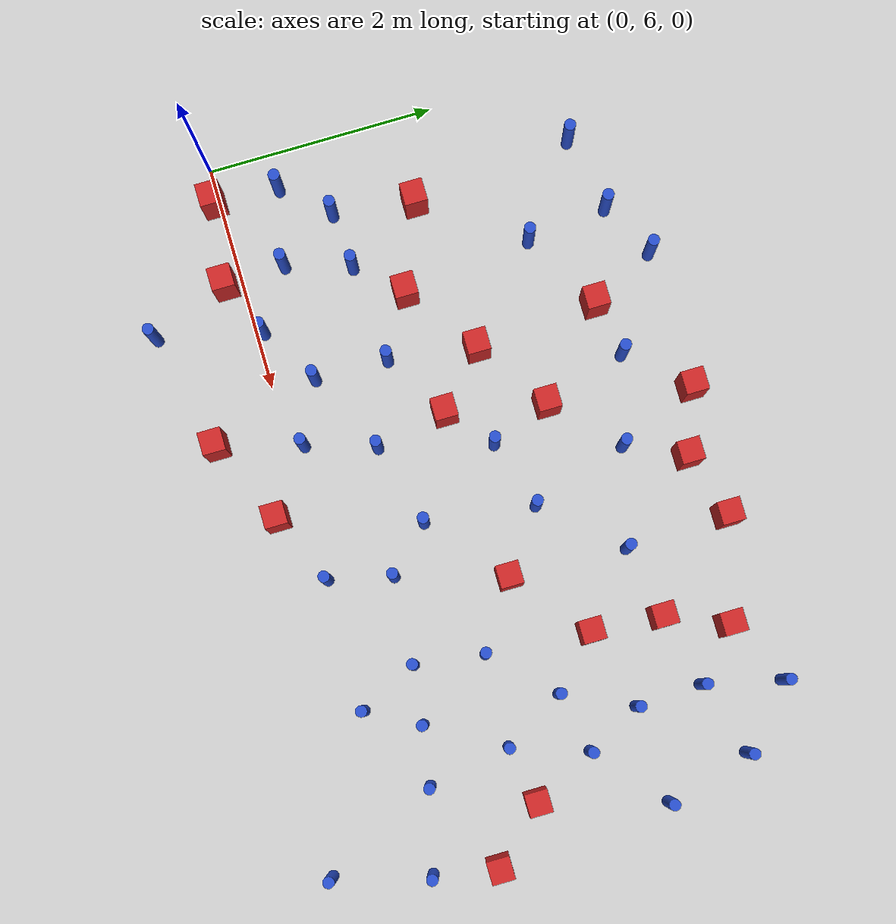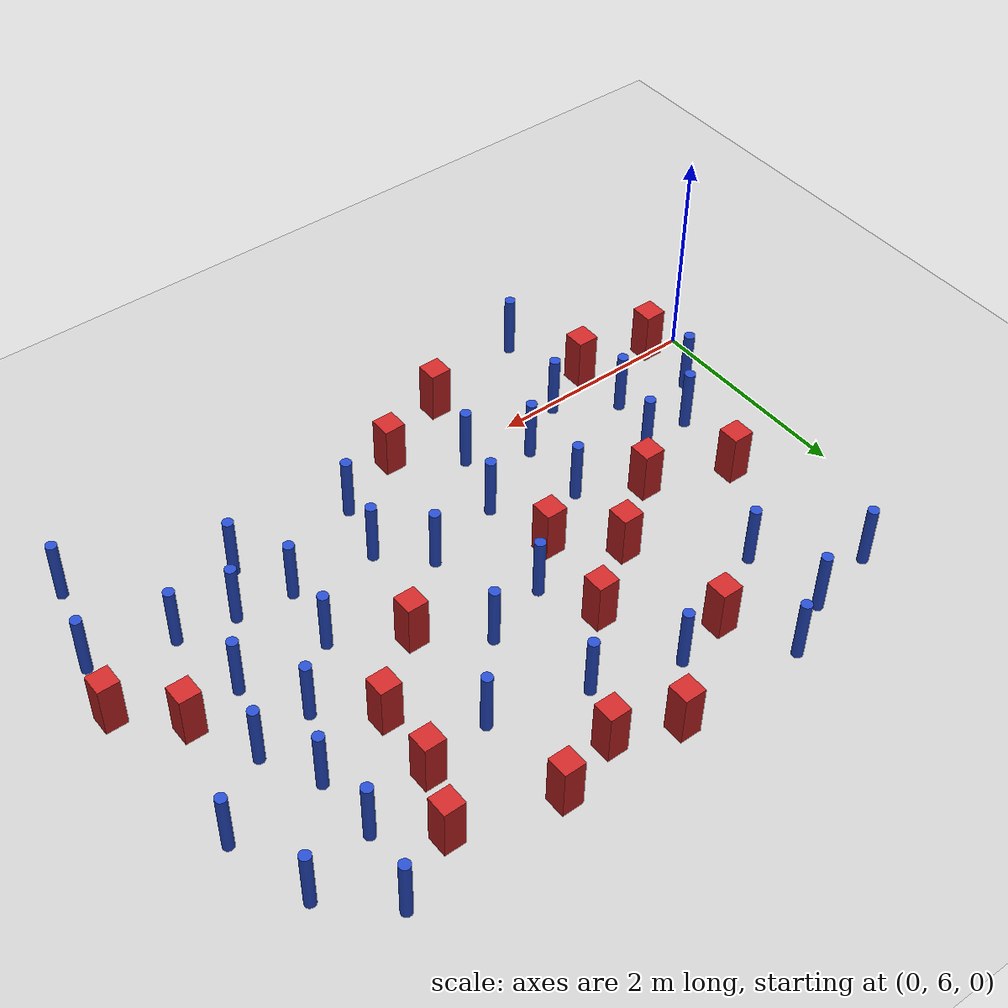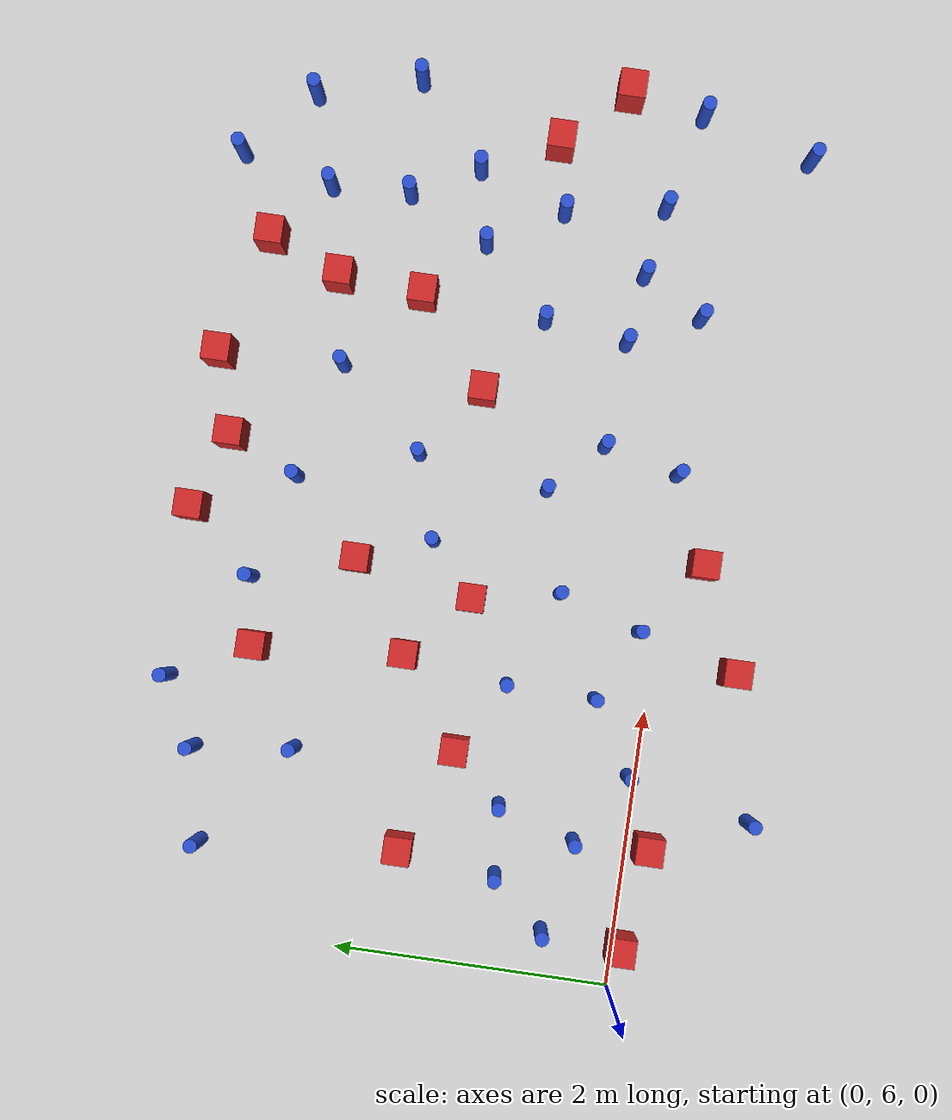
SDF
<sdf version="1.6">
 <world name="default">
  <model name="ground_plane">
   <static>1</static>
   <link name="link">
    <collision name="collision">
     <geometry><plane><normal>0 0 1</normal><size>100 100</size></plane></geometry>
     <surface><friction><ode><mu>100</mu><mu2>50</mu2></ode></friction></surface>
    </collision>
    <visual name="visual">
     <cast_shadows>0</cast_shadows>
     <geometry><plane><normal>0 0 1</normal><size>100 100</size></plane></geometry>
     <material>
      <ambient>1.0 1.0 1.0 1.0</ambient>
      <diffuse>0.8 0.8 0.8 1.0</diffuse>
      <specular>0.01 0.01 0.01 1.000000</specular>
     </material>
    </visual>
   </link>
  </model>
  <model name="square_post_obstacle19">
   <static>true</static>
   <pose>5.06456750365 9.18860553168 -6.11067671241e-07 -5.50515727128e-06 -8.79689657224e-07 2.37013304536e-05</pose>
   <link name="link">
    <pose>0 0 0.25 0 -0 0</pose>
    <inertial>
     <mass>100</mass>
     <inertia>
      <ixx>0.166667</ixx>
      <ixy>0</ixy>
      <ixz>0</ixz>
      <iyy>0.166667</iyy>
      <iyz>0</iyz>
      <izz>0.166667</izz>
     </inertia>
    </inertial>
    <collision name="collision"><geometry><box><size>.2 .2 .5</size></box></geometry></collision>
    <visual name="visual">
     <geometry><box><size>.2 .2 .5</size></box></geometry>
     <material>
      <script><name>Gazebo/Red</name><uri>file://media/materials/scripts/gazebo.material</uri></script>
     </material>
    </visual>
   </link>
  </model>
  <model name="square_post_obstacle26">
   <static>true</static>
   <pose>3.58451484105 9.26564607934 -6.11067671241e-07 -5.50515727128e-06 -8.79689657224e-07 2.37013304536e-05</pose>
   <link name="link">
    <pose>0 0 0.25 0 -0 0</pose>
    <inertial>
     <mass>100</mass>
     <inertia>
      <ixx>0.166667</ixx>
      <ixy>0</ixy>
      <ixz>0</ixz>
      <iyy>0.166667</iyy>
      <iyz>0</iyz>
      <izz>0.166667</izz>
     </inertia>
    </inertial>
    <collision name="collision"><geometry><box><size>.2 .2 .5</size></box></geometry></collision>
    <visual name="visual">
     <geometry><box><size>.2 .2 .5</size></box></geometry>
     <material>
      <script><name>Gazebo/Red</name><uri>file://media/materials/scripts/gazebo.material</uri></script>
     </material>
    </visual>
   </link>
  </model>
  <model name="pole_obstacle32">
   <static>true</static>
   <pose>3.352178859 8.76309005631 -9.4761961606e-06 5.49618799729e-07 2.36310414e-07 -1.55090534824e-07</pose>
   <link name="link">
    <pose>0 0 0.3 0 -0 0</pose>
    <inertial>
     <mass>1</mass>
     <inertia><ixx>0.145833</ixx><ixy>0</ixy><ixz>0</ixz><iyy>0.145833</iyy><iyz>0</iyz><izz>0.125</izz></inertia>
    </inertial>
    <collision name="collision">
     <geometry><cylinder><radius>0.05</radius><length>.6</length></cylinder></geometry>
    </collision>
    <visual name="visual">
     <geometry><cylinder><radius>0.05</radius><length>.6</length></cylinder></geometry>
     <material>
      <script><name>Gazebo/Blue</name><uri>file://media/materials/scripts/gazebo.material</uri></script>
     </material>
    </visual>
   </link>
  </model>
  <model name="square_post_obstacle27">
   <static>true</static>
   <pose>0.795154790728 7.63731687409 -6.11067671241e-07 -5.50515727128e-06 -8.79689657224e-07 2.37013304536e-05</pose>
   <link name="link">
    <pose>0 0 0.25 0 -0 0</pose>
    <inertial>
     <mass>100</mass>
     <inertia>
      <ixx>0.166667</ixx>
      <ixy>0</ixy>
      <ixz>0</ixz>
      <iyy>0.166667</iyy>
      <iyz>0</iyz>
      <izz>0.166667</izz>
     </inertia>
    </inertial>
    <collision name="collision"><geometry><box><size>.2 .2 .5</size></box></geometry></collision>
    <visual name="visual">
     <geometry><box><size>.2 .2 .5</size></box></geometry>
     <material>
      <script><name>Gazebo/Red</name><uri>file://media/materials/scripts/gazebo.material</uri></script>
     </material>
    </visual>
   </link>
  </model>
  <model name="pole_obstacle33">
   <static>true</static>
   <pose>1.53387280645 6.06597143249 -9.47619616065e-06 5.49618799737e-07 2.36310414061e-07 -1.550905348e-07</pose>
   <link name="link">
    <pose>0 0 0.3 0 -0 0</pose>
    <inertial>
     <mass>1</mass>
     <inertia><ixx>0.145833</ixx><ixy>0</ixy><ixz>0</ixz><iyy>0.145833</iyy><iyz>0</iyz><izz>0.125</izz></inertia>
    </inertial>
    <collision name="collision">
     <geometry><cylinder><radius>0.05</radius><length>.6</length></cylinder></geometry>
    </collision>
    <visual name="visual">
     <geometry><cylinder><radius>0.05</radius><length>.6</length></cylinder></geometry>
     <material>
      <script><name>Gazebo/Blue</name><uri>file://media/materials/scripts/gazebo.material</uri></script>
     </material>
    </visual>
   </link>
  </model>
  <model name="pole_obstacle35">
   <static>true</static>
   <pose>2.06796821063 7.03026522082 -9.47619616065e-06 5.49618799738e-07 2.3631041406e-07 -1.55090534801e-07</pose>
   <link name="link">
    <pose>0 0 0.3 0 -0 0</pose>
    <inertial>
     <mass>1</mass>
     <inertia><ixx>0.145833</ixx><ixy>0</ixy><ixz>0</ixz><iyy>0.145833</iyy><iyz>0</iyz><izz>0.125</izz></inertia>
    </inertial>
    <collision name="collision">
     <geometry><cylinder><radius>0.05</radius><length>.6</length></cylinder></geometry>
    </collision>
    <visual name="visual">
     <geometry><cylinder><radius>0.05</radius><length>.6</length></cylinder></geometry>
     <material>
      <script><name>Gazebo/Blue</name><uri>file://media/materials/scripts/gazebo.material</uri></script>
     </material>
    </visual>
   </link>
  </model>
  <model name="pole_obstacle41">
   <static>true</static>
   <pose>6.16754194107 5.36810423924 -9.47619616065e-06 5.49618799737e-07 2.36310414037e-07 -1.55090534814e-07</pose>
   <link name="link">
    <pose>0 0 0.3 0 -0 0</pose>
    <inertial>
     <mass>1</mass>
     <inertia><ixx>0.145833</ixx><ixy>0</ixy><ixz>0</ixz><iyy>0.145833</iyy><iyz>0</iyz><izz>0.125</izz></inertia>
    </inertial>
    <collision name="collision">
     <geometry><cylinder><radius>0.05</radius><length>.6</length></cylinder></geometry>
    </collision>
    <visual name="visual">
     <geometry><cylinder><radius>0.05</radius><length>.6</length></cylinder></geometry>
     <material>
      <script><name>Gazebo/Blue</name><uri>file://media/materials/scripts/gazebo.material</uri></script>
     </material>
    </visual>
   </link>
  </model>
  <model name="pole_obstacle43">
   <static>true</static>
   <pose>0.69562404979 6.92408843927 -9.47619616065e-06 5.49618799737e-07 2.36310414065e-07 -1.55090534796e-07</pose>
   <link name="link">
    <pose>0 0 0.3 0 -0 0</pose>
    <inertial>
     <mass>1</mass>
     <inertia><ixx>0.145833</ixx><ixy>0</ixy><ixz>0</ixz><iyy>0.145833</iyy><iyz>0</iyz><izz>0.125</izz></inertia>
    </inertial>
    <collision name="collision">
     <geometry><cylinder><radius>0.05</radius><length>.6</length></cylinder></geometry>
    </collision>
    <visual name="visual">
     <geometry><cylinder><radius>0.05</radius><length>.6</length></cylinder></geometry>
     <material>
      <script><name>Gazebo/Blue</name><uri>file://media/materials/scripts/gazebo.material</uri></script>
     </material>
    </visual>
   </link>
  </model>
  <model name="pole_obstacle46">
   <static>true</static>
   <pose>1.32985829244 5.16014853182 -9.47619616065e-06 5.49618799737e-07 2.36310414061e-07 -1.550905348e-07</pose>
   <link name="link">
    <pose>0 0 0.3 0 -0 0</pose>
    <inertial>
     <mass>1</mass>
     <inertia><ixx>0.145833</ixx><ixy>0</ixy><ixz>0</ixz><iyy>0.145833</iyy><iyz>0</iyz><izz>0.125</izz></inertia>
    </inertial>
    <collision name="collision">
     <geometry><cylinder><radius>0.05</radius><length>.6</length></cylinder></geometry>
    </collision>
    <visual name="visual">
     <geometry><cylinder><radius>0.05</radius><length>.6</length></cylinder></geometry>
     <material>
      <script><name>Gazebo/Blue</name><uri>file://media/materials/scripts/gazebo.material</uri></script>
     </material>
    </visual>
   </link>
  </model>
  <model name="pole_obstacle53">
   <static>true</static>
   <pose>4.2074985339 8.54197435382 -9.47619616065e-06 5.49618799737e-07 2.36310414065e-07 -1.55090534796e-07</pose>
   <link name="link">
    <pose>0 0 0.3 0 -0 0</pose>
    <inertial>
     <mass>1</mass>
     <inertia><ixx>0.145833</ixx><ixy>0</ixy><ixz>0</ixz><iyy>0.145833</iyy><iyz>0</iyz><izz>0.125</izz></inertia>
    </inertial>
    <collision name="collision">
     <geometry><cylinder><radius>0.05</radius><length>.6</length></cylinder></geometry>
    </collision>
    <visual name="visual">
     <geometry><cylinder><radius>0.05</radius><length>.6</length></cylinder></geometry>
     <material>
      <script><name>Gazebo/Blue</name><uri>file://media/materials/scripts/gazebo.material</uri></script>
     </material>
    </visual>
   </link>
  </model>
  <model name="pole_obstacle56">
   <static>true</static>
   <pose>1.306476107 9.21551760997 -9.47619616065e-06 5.49618799737e-07 2.36310414046e-07 -1.55090534809e-07</pose>
   <link name="link">
    <pose>0 0 0.3 0 -0 0</pose>
    <inertial>
     <mass>1</mass>
     <inertia><ixx>0.145833</ixx><ixy>0</ixy><ixz>0</ixz><iyy>0.145833</iyy><iyz>0</iyz><izz>0.125</izz></inertia>
    </inertial>
    <collision name="collision">
     <geometry><cylinder><radius>0.05</radius><length>.6</length></cylinder></geometry>
    </collision>
    <visual name="visual">
     <geometry><cylinder><radius>0.05</radius><length>.6</length></cylinder></geometry>
     <material>
      <script><name>Gazebo/Blue</name><uri>file://media/materials/scripts/gazebo.material</uri></script>
     </material>
    </visual>
   </link>
  </model>
  <model name="pole_obstacle60">
   <static>true</static>
   <pose>5.51579804954 8.23360933361 -9.47619616065e-06 5.49618799737e-07 2.36310414065e-07 -1.55090534796e-07</pose>
   <link name="link">
    <pose>0 0 0.3 0 -0 0</pose>
    <inertial>
     <mass>1</mass>
     <inertia><ixx>0.145833</ixx><ixy>0</ixy><ixz>0</ixz><iyy>0.145833</iyy><iyz>0</iyz><izz>0.125</izz></inertia>
    </inertial>
    <collision name="collision">
     <geometry><cylinder><radius>0.05</radius><length>.6</length></cylinder></geometry>
    </collision>
    <visual name="visual">
     <geometry><cylinder><radius>0.05</radius><length>.6</length></cylinder></geometry>
     <material>
      <script><name>Gazebo/Blue</name><uri>file://media/materials/scripts/gazebo.material</uri></script>
     </material>
    </visual>
   </link>
  </model>
  <model name="pole_obstacle62">
   <static>true</static>
   <pose>4.65214553466 6.51586368722 -9.47619616065e-06 5.49618799737e-07 2.36310414037e-07 -1.55090534814e-07</pose>
   <link name="link">
    <pose>0 0 0.3 0 -0 0</pose>
    <inertial>
     <mass>1</mass>
     <inertia><ixx>0.145833</ixx><ixy>0</ixy><ixz>0</ixz><iyy>0.145833</iyy><iyz>0</iyz><izz>0.125</izz></inertia>
    </inertial>
    <collision name="collision">
     <geometry><cylinder><radius>0.05</radius><length>.6</length></cylinder></geometry>
    </collision>
    <visual name="visual">
     <geometry><cylinder><radius>0.05</radius><length>.6</length></cylinder></geometry>
     <material>
      <script><name>Gazebo/Blue</name><uri>file://media/materials/scripts/gazebo.material</uri></script>
     </material>
    </visual>
   </link>
  </model>
  <model name="pole_obstacle74">
   <static>true</static>
   <pose>0.635457854481 9.07619519162 -9.47619616065e-06 5.49618799737e-07 2.36310414038e-07 -1.55090534813e-07</pose>
   <link name="link">
    <pose>0 0 0.3 0 -0 0</pose>
    <inertial>
     <mass>1</mass>
     <inertia><ixx>0.145833</ixx><ixy>0</ixy><ixz>0</ixz><iyy>0.145833</iyy><iyz>0</iyz><izz>0.125</izz></inertia>
    </inertial>
    <collision name="collision">
     <geometry><cylinder><radius>0.05</radius><length>.6</length></cylinder></geometry>
    </collision>
    <visual name="visual">
     <geometry><cylinder><radius>0.05</radius><length>.6</length></cylinder></geometry>
     <material>
      <script><name>Gazebo/Blue</name><uri>file://media/materials/scripts/gazebo.material</uri></script>
     </material>
    </visual>
   </link>
  </model>
  <model name="square_post_obstacle66">
   <static>true</static>
   <pose>2.8184095951 8.23526689373 -6.11067671241e-07 -5.50515727128e-06 -8.79689657224e-07 2.37013304536e-05</pose>
   <link name="link">
    <pose>0 0 0.25 0 -0 0</pose>
    <inertial>
     <mass>100</mass>
     <inertia>
      <ixx>0.166667</ixx>
      <ixy>0</ixy>
      <ixz>0</ixz>
      <iyy>0.166667</iyy>
      <iyz>0</iyz>
      <izz>0.166667</izz>
     </inertia>
    </inertial>
    <collision name="collision"><geometry><box><size>.2 .2 .5</size></box></geometry></collision>
    <visual name="visual">
     <geometry><box><size>.2 .2 .5</size></box></geometry>
     <material>
      <script><name>Gazebo/Red</name><uri>file://media/materials/scripts/gazebo.material</uri></script>
     </material>
    </visual>
   </link>
  </model>
  <model name="pole_obstacle81">
   <static>true</static>
   <pose>5.64827300165 9.48971298139 -9.47619616065e-06 5.49618799737e-07 2.36310414065e-07 -1.55090534796e-07</pose>
   <link name="link">
    <pose>0 0 0.3 0 -0 0</pose>
    <inertial>
     <mass>1</mass>
     <inertia><ixx>0.145833</ixx><ixy>0</ixy><ixz>0</ixz><iyy>0.145833</iyy><iyz>0</iyz><izz>0.125</izz></inertia>
    </inertial>
    <collision name="collision">
     <geometry><cylinder><radius>0.05</radius><length>.6</length></cylinder></geometry>
    </collision>
    <visual name="visual">
     <geometry><cylinder><radius>0.05</radius><length>.6</length></cylinder></geometry>
     <material>
      <script><name>Gazebo/Blue</name><uri>file://media/materials/scripts/gazebo.material</uri></script>
     </material>
    </visual>
   </link>
  </model>
  <model name="pole_obstacle94">
   <static>true</static>
   <pose>2.58232456559 8.98506720713 -9.4761961606e-06 5.49618799729e-07 2.36310414e-07 -1.55090534824e-07</pose>
   <link name="link">
    <pose>0 0 0.3 0 -0 0</pose>
    <inertial>
     <mass>1</mass>
     <inertia><ixx>0.145833</ixx><ixy>0</ixy><ixz>0</ixz><iyy>0.145833</iyy><iyz>0</iyz><izz>0.125</izz></inertia>
    </inertial>
    <collision name="collision">
     <geometry><cylinder><radius>0.05</radius><length>.6</length></cylinder></geometry>
    </collision>
    <visual name="visual">
     <geometry><cylinder><radius>0.05</radius><length>.6</length></cylinder></geometry>
     <material>
      <script><name>Gazebo/Blue</name><uri>file://media/materials/scripts/gazebo.material</uri></script>
     </material>
    </visual>
   </link>
  </model>
  <model name="pole_obstacle97">
   <static>true</static>
   <pose>2.05396237625 6.38372220486 -9.47619616065e-06 5.49618799738e-07 2.3631041406e-07 -1.55090534801e-07</pose>
   <link name="link">
    <pose>0 0 0.3 0 -0 0</pose>
    <inertial>
     <mass>1</mass>
     <inertia><ixx>0.145833</ixx><ixy>0</ixy><ixz>0</ixz><iyy>0.145833</iyy><iyz>0</iyz><izz>0.125</izz></inertia>
    </inertial>
    <collision name="collision">
     <geometry><cylinder><radius>0.05</radius><length>.6</length></cylinder></geometry>
    </collision>
    <visual name="visual">
     <geometry><cylinder><radius>0.05</radius><length>.6</length></cylinder></geometry>
     <material>
      <script><name>Gazebo/Blue</name><uri>file://media/materials/scripts/gazebo.material</uri></script>
     </material>
    </visual>
   </link>
  </model>
  <model name="square_post_obstacle95">
   <static>true</static>
   <pose>2.09166707071 8.88248718419 -6.11067671241e-07 -5.50515727128e-06 -8.79689657224e-07 2.37013304536e-05</pose>
   <link name="link">
    <pose>0 0 0.25 0 -0 0</pose>
    <inertial>
     <mass>100</mass>
     <inertia>
      <ixx>0.166667</ixx>
      <ixy>0</ixy>
      <ixz>0</ixz>
      <iyy>0.166667</iyy>
      <iyz>0</iyz>
      <izz>0.166667</izz>
     </inertia>
    </inertial>
    <collision name="collision"><geometry><box><size>.2 .2 .5</size></box></geometry></collision>
    <visual name="visual">
     <geometry><box><size>.2 .2 .5</size></box></geometry>
     <material>
      <script><name>Gazebo/Red</name><uri>file://media/materials/scripts/gazebo.material</uri></script>
     </material>
    </visual>
   </link>
  </model>
  <model name="square_post_obstacle99">
   <static>true</static>
   <pose>4.16029869669 7.50338387505 -6.11067671241e-07 -5.50515727128e-06 -8.79689657224e-07 2.37013304536e-05</pose>
   <link name="link">
    <pose>0 0 0.25 0 -0 0</pose>
    <inertial>
     <mass>100</mass>
     <inertia>
      <ixx>0.166667</ixx>
      <ixy>0</ixy>
      <ixz>0</ixz>
      <iyy>0.166667</iyy>
      <iyz>0</iyz>
      <izz>0.166667</izz>
     </inertia>
    </inertial>
    <collision name="collision"><geometry><box><size>.2 .2 .5</size></box></geometry></collision>
    <visual name="visual">
     <geometry><box><size>.2 .2 .5</size></box></geometry>
     <material>
      <script><name>Gazebo/Red</name><uri>file://media/materials/scripts/gazebo.material</uri></script>
     </material>
    </visual>
   </link>
  </model>
  <model name="pole_obstacle104">
   <static>true</static>
   <pose>6.14962482124 9.01870685861 -9.47619616065e-06 5.49618799737e-07 2.36310414065e-07 -1.55090534796e-07</pose>
   <link name="link">
    <pose>0 0 0.3 0 -0 0</pose>
    <inertial>
     <mass>1</mass>
     <inertia><ixx>0.145833</ixx><ixy>0</ixy><ixz>0</ixz><iyy>0.145833</iyy><iyz>0</iyz><izz>0.125</izz></inertia>
    </inertial>
    <collision name="collision">
     <geometry><cylinder><radius>0.05</radius><length>.6</length></cylinder></geometry>
    </collision>
    <visual name="visual">
     <geometry><cylinder><radius>0.05</radius><length>.6</length></cylinder></geometry>
     <material>
      <script><name>Gazebo/Blue</name><uri>file://media/materials/scripts/gazebo.material</uri></script>
     </material>
    </visual>
   </link>
  </model>
  <model name="square_post_obstacle102">
   <static>true</static>
   <pose>2.18137248666 7.79660130478 -6.11067671241e-07 -5.50515727128e-06 -8.79689657224e-07 2.37013304536e-05</pose>
   <link name="link">
    <pose>0 0 0.25 0 -0 0</pose>
    <inertial>
     <mass>100</mass>
     <inertia>
      <ixx>0.166667</ixx>
      <ixy>0</ixy>
      <ixz>0</ixz>
      <iyy>0.166667</iyy>
      <iyz>0</iyz>
      <izz>0.166667</izz>
     </inertia>
    </inertial>
    <collision name="collision"><geometry><box><size>.2 .2 .5</size></box></geometry></collision>
    <visual name="visual">
     <geometry><box><size>.2 .2 .5</size></box></geometry>
     <material>
      <script><name>Gazebo/Red</name><uri>file://media/materials/scripts/gazebo.material</uri></script>
     </material>
    </visual>
   </link>
  </model>
  <model name="pole_obstacle110">
   <static>true</static>
   <pose>2.77662614913 6.73837416838 -9.47619616065e-06 5.49618799738e-07 2.3631041406e-07 -1.55090534801e-07</pose>
   <link name="link">
    <pose>0 0 0.3 0 -0 0</pose>
    <inertial>
     <mass>1</mass>
     <inertia><ixx>0.145833</ixx><ixy>0</ixy><ixz>0</ixz><iyy>0.145833</iyy><iyz>0</iyz><izz>0.125</izz></inertia>
    </inertial>
    <collision name="collision">
     <geometry><cylinder><radius>0.05</radius><length>.6</length></cylinder></geometry>
    </collision>
    <visual name="visual">
     <geometry><cylinder><radius>0.05</radius><length>.6</length></cylinder></geometry>
     <material>
      <script><name>Gazebo/Blue</name><uri>file://media/materials/scripts/gazebo.material</uri></script>
     </material>
    </visual>
   </link>
  </model>
  <model name="pole_obstacle113">
   <static>true</static>
   <pose>5.76841336883 7.74997790852 -9.47619616065e-06 5.49618799737e-07 2.36310414037e-07 -1.55090534814e-07</pose>
   <link name="link">
    <pose>0 0 0.3 0 -0 0</pose>
    <inertial>
     <mass>1</mass>
     <inertia><ixx>0.145833</ixx><ixy>0</ixy><ixz>0</ixz><iyy>0.145833</iyy><iyz>0</iyz><izz>0.125</izz></inertia>
    </inertial>
    <collision name="collision">
     <geometry><cylinder><radius>0.05</radius><length>.6</length></cylinder></geometry>
    </collision>
    <visual name="visual">
     <geometry><cylinder><radius>0.05</radius><length>.6</length></cylinder></geometry>
     <material>
      <script><name>Gazebo/Blue</name><uri>file://media/materials/scripts/gazebo.material</uri></script>
     </material>
    </visual>
   </link>
  </model>
  <model name="square_post_obstacle124">
   <static>true</static>
   <pose>2.38017946233 5.40930505218 -6.11067671241e-07 -5.50515727128e-06 -8.79689657224e-07 2.37013304536e-05</pose>
   <link name="link">
    <pose>0 0 0.25 0 -0 0</pose>
    <inertial>
     <mass>100</mass>
     <inertia>
      <ixx>0.166667</ixx>
      <ixy>0</ixy>
      <ixz>0</ixz>
      <iyy>0.166667</iyy>
      <iyz>0</iyz>
      <izz>0.166667</izz>
     </inertia>
    </inertial>
    <collision name="collision"><geometry><box><size>.2 .2 .5</size></box></geometry></collision>
    <visual name="visual">
     <geometry><box><size>.2 .2 .5</size></box></geometry>
     <material>
      <script><name>Gazebo/Red</name><uri>file://media/materials/scripts/gazebo.material</uri></script>
     </material>
    </visual>
   </link>
  </model>
  <model name="pole_obstacle131">
   <static>true</static>
   <pose>3.88376765679 6.56547482414 -9.47619616065e-06 5.49618799738e-07 2.3631041406e-07 -1.55090534801e-07</pose>
   <link name="link">
    <pose>0 0 0.3 0 -0 0</pose>
    <inertial>
     <mass>1</mass>
     <inertia><ixx>0.145833</ixx><ixy>0</ixy><ixz>0</ixz><iyy>0.145833</iyy><iyz>0</iyz><izz>0.125</izz></inertia>
    </inertial>
    <collision name="collision">
     <geometry><cylinder><radius>0.05</radius><length>.6</length></cylinder></geometry>
    </collision>
    <visual name="visual">
     <geometry><cylinder><radius>0.05</radius><length>.6</length></cylinder></geometry>
     <material>
      <script><name>Gazebo/Blue</name><uri>file://media/materials/scripts/gazebo.material</uri></script>
     </material>
    </visual>
   </link>
  </model>
  <model name="square_post_obstacle131">
   <static>true</static>
   <pose>6.04284514416 7.19947064179 -6.11067671241e-07 -5.50515727128e-06 -8.79689657224e-07 2.37013304536e-05</pose>
   <link name="link">
    <pose>0 0 0.25 0 -0 0</pose>
    <inertial>
     <mass>100</mass>
     <inertia>
      <ixx>0.166667</ixx>
      <ixy>0</ixy>
      <ixz>0</ixz>
      <iyy>0.166667</iyy>
      <iyz>0</iyz>
      <izz>0.166667</izz>
     </inertia>
    </inertial>
    <collision name="collision"><geometry><box><size>.2 .2 .5</size></box></geometry></collision>
    <visual name="visual">
     <geometry><box><size>.2 .2 .5</size></box></geometry>
     <material>
      <script><name>Gazebo/Red</name><uri>file://media/materials/scripts/gazebo.material</uri></script>
     </material>
    </visual>
   </link>
  </model>
  <model name="pole_obstacle138">
   <static>true</static>
   <pose>3.75040486233 6.01168148282 -9.47619616065e-06 5.49618799738e-07 2.3631041406e-07 -1.55090534801e-07</pose>
   <link name="link">
    <pose>0 0 0.3 0 -0 0</pose>
    <inertial>
     <mass>1</mass>
     <inertia><ixx>0.145833</ixx><ixy>0</ixy><ixz>0</ixz><iyy>0.145833</iyy><iyz>0</iyz><izz>0.125</izz></inertia>
    </inertial>
    <collision name="collision">
     <geometry><cylinder><radius>0.05</radius><length>.6</length></cylinder></geometry>
    </collision>
    <visual name="visual">
     <geometry><cylinder><radius>0.05</radius><length>.6</length></cylinder></geometry>
     <material>
      <script><name>Gazebo/Blue</name><uri>file://media/materials/scripts/gazebo.material</uri></script>
     </material>
    </visual>
   </link>
  </model>
  <model name="pole_obstacle139">
   <static>true</static>
   <pose>5.67176726961 6.36876781877 -9.47619616065e-06 5.49618799737e-07 2.36310414037e-07 -1.55090534814e-07</pose>
   <link name="link">
    <pose>0 0 0.3 0 -0 0</pose>
    <inertial>
     <mass>1</mass>
     <inertia><ixx>0.145833</ixx><ixy>0</ixy><ixz>0</ixz><iyy>0.145833</iyy><iyz>0</iyz><izz>0.125</izz></inertia>
    </inertial>
    <collision name="collision">
     <geometry><cylinder><radius>0.05</radius><length>.6</length></cylinder></geometry>
    </collision>
    <visual name="visual">
     <geometry><cylinder><radius>0.05</radius><length>.6</length></cylinder></geometry>
     <material>
      <script><name>Gazebo/Blue</name><uri>file://media/materials/scripts/gazebo.material</uri></script>
     </material>
    </visual>
   </link>
  </model>
  <model name="square_post_obstacle136">
   <static>true</static>
   <pose>6.47978473297 6.74435235856 -6.11067671241e-07 -5.50515727128e-06 -8.79689657224e-07 2.37013304536e-05</pose>
   <link name="link">
    <pose>0 0 0.25 0 -0 0</pose>
    <inertial>
     <mass>100</mass>
     <inertia>
      <ixx>0.166667</ixx>
      <ixy>0</ixy>
      <ixz>0</ixz>
      <iyy>0.166667</iyy>
      <iyz>0</iyz>
      <izz>0.166667</izz>
     </inertia>
    </inertial>
    <collision name="collision"><geometry><box><size>.2 .2 .5</size></box></geometry></collision>
    <visual name="visual">
     <geometry><box><size>.2 .2 .5</size></box></geometry>
     <material>
      <script><name>Gazebo/Red</name><uri>file://media/materials/scripts/gazebo.material</uri></script>
     </material>
    </visual>
   </link>
  </model>
  <model name="square_post_obstacle138">
   <static>true</static>
   <pose>0.314526451158 5.95752838593 -6.11067671241e-07 -5.50515727128e-06 -8.79689657224e-07 2.37013304536e-05</pose>
   <link name="link">
    <pose>0 0 0.25 0 -0 0</pose>
    <inertial>
     <mass>100</mass>
     <inertia>
      <ixx>0.166667</ixx>
      <ixy>0</ixy>
      <ixz>0</ixz>
      <iyy>0.166667</iyy>
      <iyz>0</iyz>
      <izz>0.166667</izz>
     </inertia>
    </inertial>
    <collision name="collision"><geometry><box><size>.2 .2 .5</size></box></geometry></collision>
    <visual name="visual">
     <geometry><box><size>.2 .2 .5</size></box></geometry>
     <material>
      <script><name>Gazebo/Red</name><uri>file://media/materials/scripts/gazebo.material</uri></script>
     </material>
    </visual>
   </link>
  </model>
  <model name="pole_obstacle146">
   <static>true</static>
   <pose>3.63726874802 7.90018663886 -9.47619616065e-06 5.49618799738e-07 2.3631041406e-07 -1.55090534801e-07</pose>
   <link name="link">
    <pose>0 0 0.3 0 -0 0</pose>
    <inertial>
     <mass>1</mass>
     <inertia><ixx>0.145833</ixx><ixy>0</ixy><ixz>0</ixz><iyy>0.145833</iyy><iyz>0</iyz><izz>0.125</izz></inertia>
    </inertial>
    <collision name="collision">
     <geometry><cylinder><radius>0.05</radius><length>.6</length></cylinder></geometry>
    </collision>
    <visual name="visual">
     <geometry><cylinder><radius>0.05</radius><length>.6</length></cylinder></geometry>
     <material>
      <script><name>Gazebo/Blue</name><uri>file://media/materials/scripts/gazebo.material</uri></script>
     </material>
    </visual>
   </link>
  </model>
  <model name="pole_obstacle149">
   <static>true</static>
   <pose>5.54113057824 7.09716697608 -9.47619616065e-06 5.49618799737e-07 2.36310414037e-07 -1.55090534814e-07</pose>
   <link name="link">
    <pose>0 0 0.3 0 -0 0</pose>
    <inertial>
     <mass>1</mass>
     <inertia><ixx>0.145833</ixx><ixy>0</ixy><ixz>0</ixz><iyy>0.145833</iyy><iyz>0</iyz><izz>0.125</izz></inertia>
    </inertial>
    <collision name="collision">
     <geometry><cylinder><radius>0.05</radius><length>.6</length></cylinder></geometry>
    </collision>
    <visual name="visual">
     <geometry><cylinder><radius>0.05</radius><length>.6</length></cylinder></geometry>
     <material>
      <script><name>Gazebo/Blue</name><uri>file://media/materials/scripts/gazebo.material</uri></script>
     </material>
    </visual>
   </link>
  </model>
  <model name="pole_obstacle150">
   <static>true</static>
   <pose>5.1600960473 6.45443425764 -9.47619616065e-06 5.49618799737e-07 2.36310414037e-07 -1.55090534814e-07</pose>
   <link name="link">
    <pose>0 0 0.3 0 -0 0</pose>
    <inertial>
     <mass>1</mass>
     <inertia><ixx>0.145833</ixx><ixy>0</ixy><ixz>0</ixz><iyy>0.145833</iyy><iyz>0</iyz><izz>0.125</izz></inertia>
    </inertial>
    <collision name="collision">
     <geometry><cylinder><radius>0.05</radius><length>.6</length></cylinder></geometry>
    </collision>
    <visual name="visual">
     <geometry><cylinder><radius>0.05</radius><length>.6</length></cylinder></geometry>
     <material>
      <script><name>Gazebo/Blue</name><uri>file://media/materials/scripts/gazebo.material</uri></script>
     </material>
    </visual>
   </link>
  </model>
  <model name="pole_obstacle163">
   <static>true</static>
   <pose>4.7338340878 7.12941362744 -9.47619616065e-06 5.49618799737e-07 2.36310414037e-07 -1.55090534814e-07</pose>
   <link name="link">
    <pose>0 0 0.3 0 -0 0</pose>
    <inertial>
     <mass>1</mass>
     <inertia><ixx>0.145833</ixx><ixy>0</ixy><ixz>0</ixz><iyy>0.145833</iyy><iyz>0</iyz><izz>0.125</izz></inertia>
    </inertial>
    <collision name="collision">
     <geometry><cylinder><radius>0.05</radius><length>.6</length></cylinder></geometry>
    </collision>
    <visual name="visual">
     <geometry><cylinder><radius>0.05</radius><length>.6</length></cylinder></geometry>
     <material>
      <script><name>Gazebo/Blue</name><uri>file://media/materials/scripts/gazebo.material</uri></script>
     </material>
    </visual>
   </link>
  </model>
  <model name="square_post_obstacle158">
   <static>true</static>
   <pose>2.64756886154 7.37179225267 -6.11067671241e-07 -5.50515727128e-06 -8.79689657224e-07 2.37013304536e-05</pose>
   <link name="link">
    <pose>0 0 0.25 0 -0 0</pose>
    <inertial>
     <mass>100</mass>
     <inertia>
      <ixx>0.166667</ixx>
      <ixy>0</ixy>
      <ixz>0</ixz>
      <iyy>0.166667</iyy>
      <iyz>0</iyz>
      <izz>0.166667</izz>
     </inertia>
    </inertial>
    <collision name="collision"><geometry><box><size>.2 .2 .5</size></box></geometry></collision>
    <visual name="visual">
     <geometry><box><size>.2 .2 .5</size></box></geometry>
     <material>
      <script><name>Gazebo/Red</name><uri>file://media/materials/scripts/gazebo.material</uri></script>
     </material>
    </visual>
   </link>
  </model>
  <model name="pole_obstacle170">
   <static>true</static>
   <pose>3.50924602433 6.93925896593 -9.47619616065e-06 5.49618799738e-07 2.3631041406e-07 -1.55090534801e-07</pose>
   <link name="link">
    <pose>0 0 0.3 0 -0 0</pose>
    <inertial>
     <mass>1</mass>
     <inertia><ixx>0.145833</ixx><ixy>0</ixy><ixz>0</ixz><iyy>0.145833</iyy><iyz>0</iyz><izz>0.125</izz></inertia>
    </inertial>
    <collision name="collision">
     <geometry><cylinder><radius>0.05</radius><length>.6</length></cylinder></geometry>
    </collision>
    <visual name="visual">
     <geometry><cylinder><radius>0.05</radius><length>.6</length></cylinder></geometry>
     <material>
      <script><name>Gazebo/Blue</name><uri>file://media/materials/scripts/gazebo.material</uri></script>
     </material>
    </visual>
   </link>
  </model>
  <model name="square_post_obstacle173">
   <static>true</static>
   <pose>4.7975111623 8.03722855101 -6.11067671241e-07 -5.50515727128e-06 -8.79689657224e-07 2.37013304536e-05</pose>
   <link name="link">
    <pose>0 0 0.25 0 -0 0</pose>
    <inertial>
     <mass>100</mass>
     <inertia>
      <ixx>0.166667</ixx>
      <ixy>0</ixy>
      <ixz>0</ixz>
      <iyy>0.166667</iyy>
      <iyz>0</iyz>
      <izz>0.166667</izz>
     </inertia>
    </inertial>
    <collision name="collision"><geometry><box><size>.2 .2 .5</size></box></geometry></collision>
    <visual name="visual">
     <geometry><box><size>.2 .2 .5</size></box></geometry>
     <material>
      <script><name>Gazebo/Red</name><uri>file://media/materials/scripts/gazebo.material</uri></script>
     </material>
    </visual>
   </link>
  </model>
  <model name="pole_obstacle185">
   <static>true</static>
   <pose>4.90610929257 6.00488195278 -9.47619616065e-06 5.49618799737e-07 2.36310414037e-07 -1.55090534814e-07</pose>
   <link name="link">
    <pose>0 0 0.3 0 -0 0</pose>
    <inertial>
     <mass>1</mass>
     <inertia><ixx>0.145833</ixx><ixy>0</ixy><ixz>0</ixz><iyy>0.145833</iyy><iyz>0</iyz><izz>0.125</izz></inertia>
    </inertial>
    <collision name="collision">
     <geometry><cylinder><radius>0.05</radius><length>.6</length></cylinder></geometry>
    </collision>
    <visual name="visual">
     <geometry><cylinder><radius>0.05</radius><length>.6</length></cylinder></geometry>
     <material>
      <script><name>Gazebo/Blue</name><uri>file://media/materials/scripts/gazebo.material</uri></script>
     </material>
    </visual>
   </link>
  </model>
  <model name="square_post_obstacle192">
   <static>true</static>
   <pose>4.84312981586 8.65656259302 -6.11067671241e-07 -5.50515727128e-06 -8.79689657224e-07 2.37013304536e-05</pose>
   <link name="link">
    <pose>0 0 0.25 0 -0 0</pose>
    <inertial>
     <mass>100</mass>
     <inertia>
      <ixx>0.166667</ixx>
      <ixy>0</ixy>
      <ixz>0</ixz>
      <iyy>0.166667</iyy>
      <iyz>0</iyz>
      <izz>0.166667</izz>
     </inertia>
    </inertial>
    <collision name="collision"><geometry><box><size>.2 .2 .5</size></box></geometry></collision>
    <visual name="visual">
     <geometry><box><size>.2 .2 .5</size></box></geometry>
     <material>
      <script><name>Gazebo/Red</name><uri>file://media/materials/scripts/gazebo.material</uri></script>
     </material>
    </visual>
   </link>
  </model>
  <model name="square_post_obstacle194">
   <static>true</static>
   <pose>4.16904186338 9.439877438 -6.11067671241e-07 -5.50515727128e-06 -8.79689657224e-07 2.37013304536e-05</pose>
   <link name="link">
    <pose>0 0 0.25 0 -0 0</pose>
    <inertial>
     <mass>100</mass>
     <inertia>
      <ixx>0.166667</ixx>
      <ixy>0</ixy>
      <ixz>0</ixz>
      <iyy>0.166667</iyy>
      <iyz>0</iyz>
      <izz>0.166667</izz>
     </inertia>
    </inertial>
    <collision name="collision"><geometry><box><size>.2 .2 .5</size></box></geometry></collision>
    <visual name="visual">
     <geometry><box><size>.2 .2 .5</size></box></geometry>
     <material>
      <script><name>Gazebo/Red</name><uri>file://media/materials/scripts/gazebo.material</uri></script>
     </material>
    </visual>
   </link>
  </model>
  <model name="pole_obstacle188">
   <static>true</static>
   <pose>0.346412001866 6.53502148515 -9.47619616065e-06 5.49618799737e-07 2.36310414065e-07 -1.55090534796e-07</pose>
   <link name="link">
    <pose>0 0 0.3 0 -0 0</pose>
    <inertial>
     <mass>1</mass>
     <inertia><ixx>0.145833</ixx><ixy>0</ixy><ixz>0</ixz><iyy>0.145833</iyy><iyz>0</iyz><izz>0.125</izz></inertia>
    </inertial>
    <collision name="collision">
     <geometry><cylinder><radius>0.05</radius><length>.6</length></cylinder></geometry>
    </collision>
    <visual name="visual">
     <geometry><cylinder><radius>0.05</radius><length>.6</length></cylinder></geometry>
     <material>
      <script><name>Gazebo/Blue</name><uri>file://media/materials/scripts/gazebo.material</uri></script>
     </material>
    </visual>
   </link>
  </model>
  <model name="square_post_obstacle200">
   <static>true</static>
   <pose>1.5460344423 7.33920655004 -6.11067671241e-07 -5.50515727128e-06 -8.79689657224e-07 2.37013304536e-05</pose>
   <link name="link">
    <pose>0 0 0.25 0 -0 0</pose>
    <inertial>
     <mass>100</mass>
     <inertia>
      <ixx>0.166667</ixx>
      <ixy>0</ixy>
      <ixz>0</ixz>
      <iyy>0.166667</iyy>
      <iyz>0</iyz>
      <izz>0.166667</izz>
     </inertia>
    </inertial>
    <collision name="collision"><geometry><box><size>.2 .2 .5</size></box></geometry></collision>
    <visual name="visual">
     <geometry><box><size>.2 .2 .5</size></box></geometry>
     <material>
      <script><name>Gazebo/Red</name><uri>file://media/materials/scripts/gazebo.material</uri></script>
     </material>
    </visual>
   </link>
  </model>
  <model name="square_post_obstacle202">
   <static>true</static>
   <pose>3.12391785531 5.74289192086 -6.11067671241e-07 -5.50515727128e-06 -8.79689657224e-07 2.37013304536e-05</pose>
   <link name="link">
    <pose>0 0 0.25 0 -0 0</pose>
    <inertial>
     <mass>100</mass>
     <inertia>
      <ixx>0.166667</ixx>
      <ixy>0</ixy>
      <ixz>0</ixz>
      <iyy>0.166667</iyy>
      <iyz>0</iyz>
      <izz>0.166667</izz>
     </inertia>
    </inertial>
    <collision name="collision"><geometry><box><size>.2 .2 .5</size></box></geometry></collision>
    <visual name="visual">
     <geometry><box><size>.2 .2 .5</size></box></geometry>
     <material>
      <script><name>Gazebo/Red</name><uri>file://media/materials/scripts/gazebo.material</uri></script>
     </material>
    </visual>
   </link>
  </model>
  <model name="square_post_obstacle205">
   <static>true</static>
   <pose>1.04523767153 5.85848408813 -6.11067671241e-07 -5.50515727128e-06 -8.79689657224e-07 2.37013304536e-05</pose>
   <link name="link">
    <pose>0 0 0.25 0 -0 0</pose>
    <inertial>
     <mass>100</mass>
     <inertia>
      <ixx>0.166667</ixx>
      <ixy>0</ixy>
      <ixz>0</ixz>
      <iyy>0.166667</iyy>
      <iyz>0</iyz>
      <izz>0.166667</izz>
     </inertia>
    </inertial>
    <collision name="collision"><geometry><box><size>.2 .2 .5</size></box></geometry></collision>
    <visual name="visual">
     <geometry><box><size>.2 .2 .5</size></box></geometry>
     <material>
      <script><name>Gazebo/Red</name><uri>file://media/materials/scripts/gazebo.material</uri></script>
     </material>
    </visual>
   </link>
  </model>
  <model name="square_post_obstacle207">
   <static>true</static>
   <pose>3.02547652044 9.47044547625 -6.11067671241e-07 -5.50515727128e-06 -8.79689657224e-07 2.37013304536e-05</pose>
   <link name="link">
    <pose>0 0 0.25 0 -0 0</pose>
    <inertial>
     <mass>100</mass>
     <inertia>
      <ixx>0.166667</ixx>
      <ixy>0</ixy>
      <ixz>0</ixz>
      <iyy>0.166667</iyy>
      <iyz>0</iyz>
      <izz>0.166667</izz>
     </inertia>
    </inertial>
    <collision name="collision"><geometry><box><size>.2 .2 .5</size></box></geometry></collision>
    <visual name="visual">
     <geometry><box><size>.2 .2 .5</size></box></geometry>
     <material>
      <script><name>Gazebo/Red</name><uri>file://media/materials/scripts/gazebo.material</uri></script>
     </material>
    </visual>
   </link>
  </model>
  <model name="pole_obstacle197">
   <static>true</static>
   <pose>1.1979848616 6.9652594428 -9.47619616065e-06 5.49618799737e-07 2.36310414061e-07 -1.550905348e-07</pose>
   <link name="link">
    <pose>0 0 0.3 0 -0 0</pose>
    <inertial>
     <mass>1</mass>
     <inertia><ixx>0.145833</ixx><ixy>0</ixy><ixz>0</ixz><iyy>0.145833</iyy><iyz>0</iyz><izz>0.125</izz></inertia>
    </inertial>
    <collision name="collision">
     <geometry><cylinder><radius>0.05</radius><length>.6</length></cylinder></geometry>
    </collision>
    <visual name="visual">
     <geometry><cylinder><radius>0.05</radius><length>.6</length></cylinder></geometry>
     <material>
      <script><name>Gazebo/Blue</name><uri>file://media/materials/scripts/gazebo.material</uri></script>
     </material>
    </visual>
   </link>
  </model>
  <model name="pole_obstacle198">
   <static>true</static>
   <pose>1.39724974422 8.49518596318 -9.47619616065e-06 5.49618799737e-07 2.36310414046e-07 -1.55090534809e-07</pose>
   <link name="link">
    <pose>0 0 0.3 0 -0 0</pose>
    <inertial>
     <mass>1</mass>
     <inertia><ixx>0.145833</ixx><ixy>0</ixy><ixz>0</ixz><iyy>0.145833</iyy><iyz>0</iyz><izz>0.125</izz></inertia>
    </inertial>
    <collision name="collision">
     <geometry><cylinder><radius>0.05</radius><length>.6</length></cylinder></geometry>
    </collision>
    <visual name="visual">
     <geometry><cylinder><radius>0.05</radius><length>.6</length></cylinder></geometry>
     <material>
      <script><name>Gazebo/Blue</name><uri>file://media/materials/scripts/gazebo.material</uri></script>
     </material>
    </visual>
   </link>
  </model>
  <model name="pole_obstacle208">
   <static>true</static>
   <pose>6.36160000939 8.26635002078 -9.47619616065e-06 5.49618799737e-07 2.36310414065e-07 -1.55090534796e-07</pose>
   <link name="link">
    <pose>0 0 0.3 0 -0 0</pose>
    <inertial>
     <mass>1</mass>
     <inertia><ixx>0.145833</ixx><ixy>0</ixy><ixz>0</ixz><iyy>0.145833</iyy><iyz>0</iyz><izz>0.125</izz></inertia>
    </inertial>
    <collision name="collision">
     <geometry><cylinder><radius>0.05</radius><length>.6</length></cylinder></geometry>
    </collision>
    <visual name="visual">
     <geometry><cylinder><radius>0.05</radius><length>.6</length></cylinder></geometry>
     <material>
      <script><name>Gazebo/Blue</name><uri>file://media/materials/scripts/gazebo.material</uri></script>
     </material>
    </visual>
   </link>
  </model>
  <model name="pole_obstacle210">
   <static>true</static>
   <pose>2.58180000939 6.13261002078 -9.4761961606e-06 5.49618799729e-07 2.36310414006e-07 -1.55090534822e-07</pose>
   <link name="link">
    <pose>0 0 0.3 0 -0 0</pose>
    <inertial>
     <mass>1</mass>
     <inertia><ixx>0.145833</ixx><ixy>0</ixy><ixz>0</ixz><iyy>0.145833</iyy><iyz>0</iyz><izz>0.125</izz></inertia>
    </inertial>
    <collision name="collision">
     <geometry><cylinder><radius>0.05</radius><length>.6</length></cylinder></geometry>
    </collision>
    <visual name="visual">
     <geometry><cylinder><radius>0.05</radius><length>.6</length></cylinder></geometry>
     <material>
      <script><name>Gazebo/Blue</name><uri>file://media/materials/scripts/gazebo.material</uri></script>
     </material>
    </visual>
   </link>
  </model>
  <model name="pole_obstacle214">
   <static>true</static>
   <pose>1.79182000939 9.47139002078 -9.47619616065e-06 5.49618799737e-07 2.36310414046e-07 -1.55090534809e-07</pose>
   <link name="link">
    <pose>0 0 0.3 0 -0 0</pose>
    <inertial>
     <mass>1</mass>
     <inertia><ixx>0.145833</ixx><ixy>0</ixy><ixz>0</ixz><iyy>0.145833</iyy><iyz>0</iyz><izz>0.125</izz></inertia>
    </inertial>
    <collision name="collision">
     <geometry><cylinder><radius>0.05</radius><length>.6</length></cylinder></geometry>
    </collision>
    <visual name="visual">
     <geometry><cylinder><radius>0.05</radius><length>.6</length></cylinder></geometry>
     <material>
      <script><name>Gazebo/Blue</name><uri>file://media/materials/scripts/gazebo.material</uri></script>
     </material>
    </visual>
   </link>
  </model>
  <model name="pole_obstacle225">
   <static>true</static>
   <pose>5.49225000939 8.81536002078 -9.47619616065e-06 5.49618799737e-07 2.36310414065e-07 -1.55090534796e-07</pose>
   <link name="link">
    <pose>0 0 0.3 0 -0 0</pose>
    <inertial>
     <mass>1</mass>
     <inertia><ixx>0.145833</ixx><ixy>0</ixy><ixz>0</ixz><iyy>0.145833</iyy><iyz>0</iyz><izz>0.125</izz></inertia>
    </inertial>
    <collision name="collision">
     <geometry><cylinder><radius>0.05</radius><length>.6</length></cylinder></geometry>
    </collision>
    <visual name="visual">
     <geometry><cylinder><radius>0.05</radius><length>.6</length></cylinder></geometry>
     <material>
      <script><name>Gazebo/Blue</name><uri>file://media/materials/scripts/gazebo.material</uri></script>
     </material>
    </visual>
   </link>
  </model>
  <model name="pole_obstacle226">
   <static>true</static>
   <pose>1.01894000939 6.39588002078 -9.47619616065e-06 5.49618799737e-07 2.36310414059e-07 -1.550905348e-07</pose>
   <link name="link">
    <pose>0 0 0.3 0 -0 0</pose>
    <inertial>
     <mass>1</mass>
     <inertia><ixx>0.145833</ixx><ixy>0</ixy><ixz>0</ixz><iyy>0.145833</iyy><iyz>0</iyz><izz>0.125</izz></inertia>
    </inertial>
    <collision name="collision">
     <geometry><cylinder><radius>0.05</radius><length>.6</length></cylinder></geometry>
    </collision>
    <visual name="visual">
     <geometry><cylinder><radius>0.05</radius><length>.6</length></cylinder></geometry>
     <material>
      <script><name>Gazebo/Blue</name><uri>file://media/materials/scripts/gazebo.material</uri></script>
     </material>
    </visual>
   </link>
  </model>
  <model name="pole_obstacle228">
   <static>true</static>
   <pose>3.02540000939 7.70876002078 -9.4761961606e-06 5.49618799729e-07 2.36310414006e-07 -1.55090534822e-07</pose>
   <link name="link">
    <pose>0 0 0.3 0 -0 0</pose>
    <inertial>
     <mass>1</mass>
     <inertia><ixx>0.145833</ixx><ixy>0</ixy><ixz>0</ixz><iyy>0.145833</iyy><iyz>0</iyz><izz>0.125</izz></inertia>
    </inertial>
    <collision name="collision">
     <geometry><cylinder><radius>0.05</radius><length>.6</length></cylinder></geometry>
    </collision>
    <visual name="visual">
     <geometry><cylinder><radius>0.05</radius><length>.6</length></cylinder></geometry>
     <material>
      <script><name>Gazebo/Blue</name><uri>file://media/materials/scripts/gazebo.material</uri></script>
     </material>
    </visual>
   </link>
  </model>
  <model name="pole_obstacle234">
   <static>true</static>
   <pose>6.38698000939 6.18683002078 -9.47619616065e-06 5.49618799737e-07 2.36310414037e-07 -1.55090534814e-07</pose>
   <link name="link">
    <pose>0 0 0.3 0 -0 0</pose>
    <inertial>
     <mass>1</mass>
     <inertia><ixx>0.145833</ixx><ixy>0</ixy><ixz>0</ixz><iyy>0.145833</iyy><iyz>0</iyz><izz>0.125</izz></inertia>
    </inertial>
    <collision name="collision">
     <geometry><cylinder><radius>0.05</radius><length>.6</length></cylinder></geometry>
    </collision>
    <visual name="visual">
     <geometry><cylinder><radius>0.05</radius><length>.6</length></cylinder></geometry>
     <material>
      <script><name>Gazebo/Blue</name><uri>file://media/materials/scripts/gazebo.material</uri></script>
     </material>
    </visual>
   </link>
  </model>
  <model name="pole_obstacle235">
   <static>true</static>
   <pose>5.23045000939 7.63306002078 -9.47619616065e-06 5.49618799737e-07 2.36310414037e-07 -1.55090534814e-07</pose>
   <link name="link">
    <pose>0 0 0.3 0 -0 0</pose>
    <inertial>
     <mass>1</mass>
     <inertia><ixx>0.145833</ixx><ixy>0</ixy><ixz>0</ixz><iyy>0.145833</iyy><iyz>0</iyz><izz>0.125</izz></inertia>
    </inertial>
    <collision name="collision">
     <geometry><cylinder><radius>0.05</radius><length>.6</length></cylinder></geometry>
    </collision>
    <visual name="visual">
     <geometry><cylinder><radius>0.05</radius><length>.6</length></cylinder></geometry>
     <material>
      <script><name>Gazebo/Blue</name><uri>file://media/materials/scripts/gazebo.material</uri></script>
     </material>
    </visual>
   </link>
  </model>
 </world>
</sdf>
